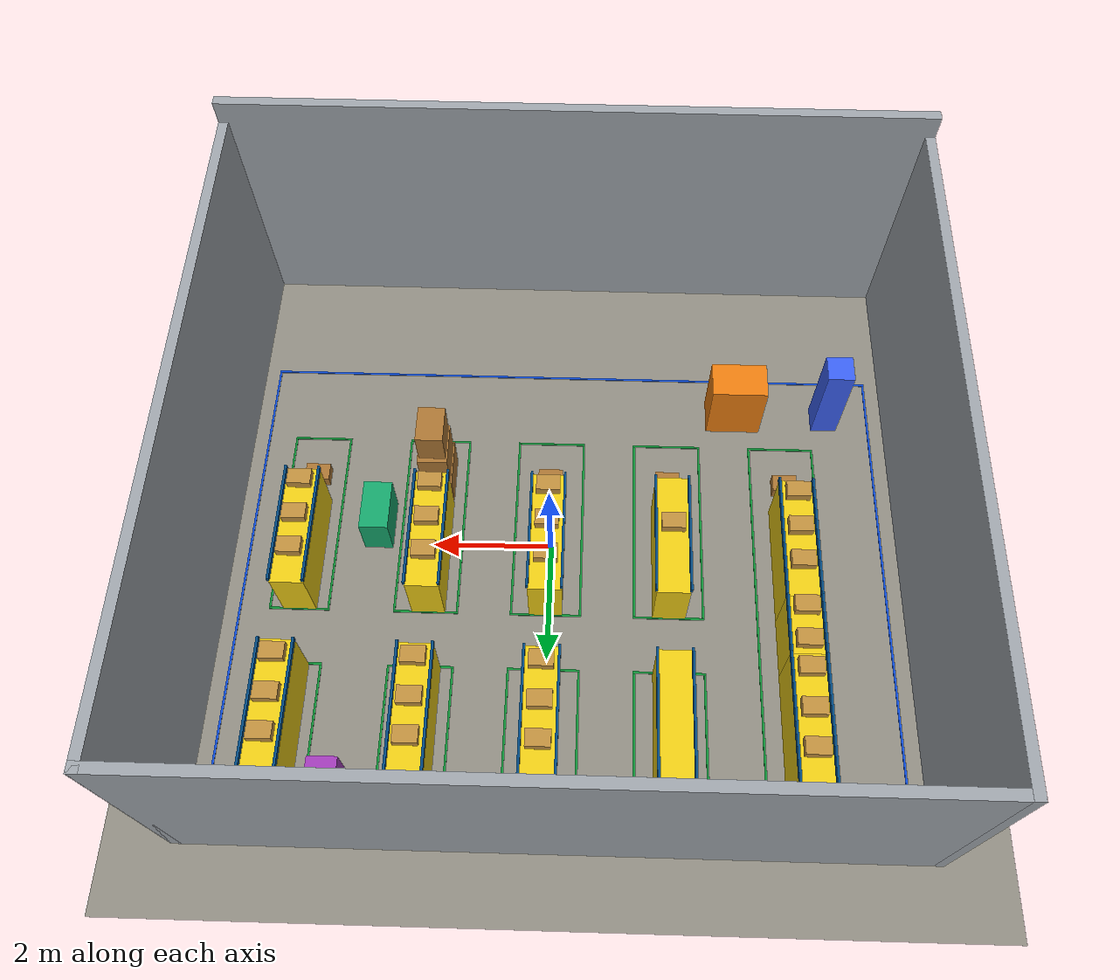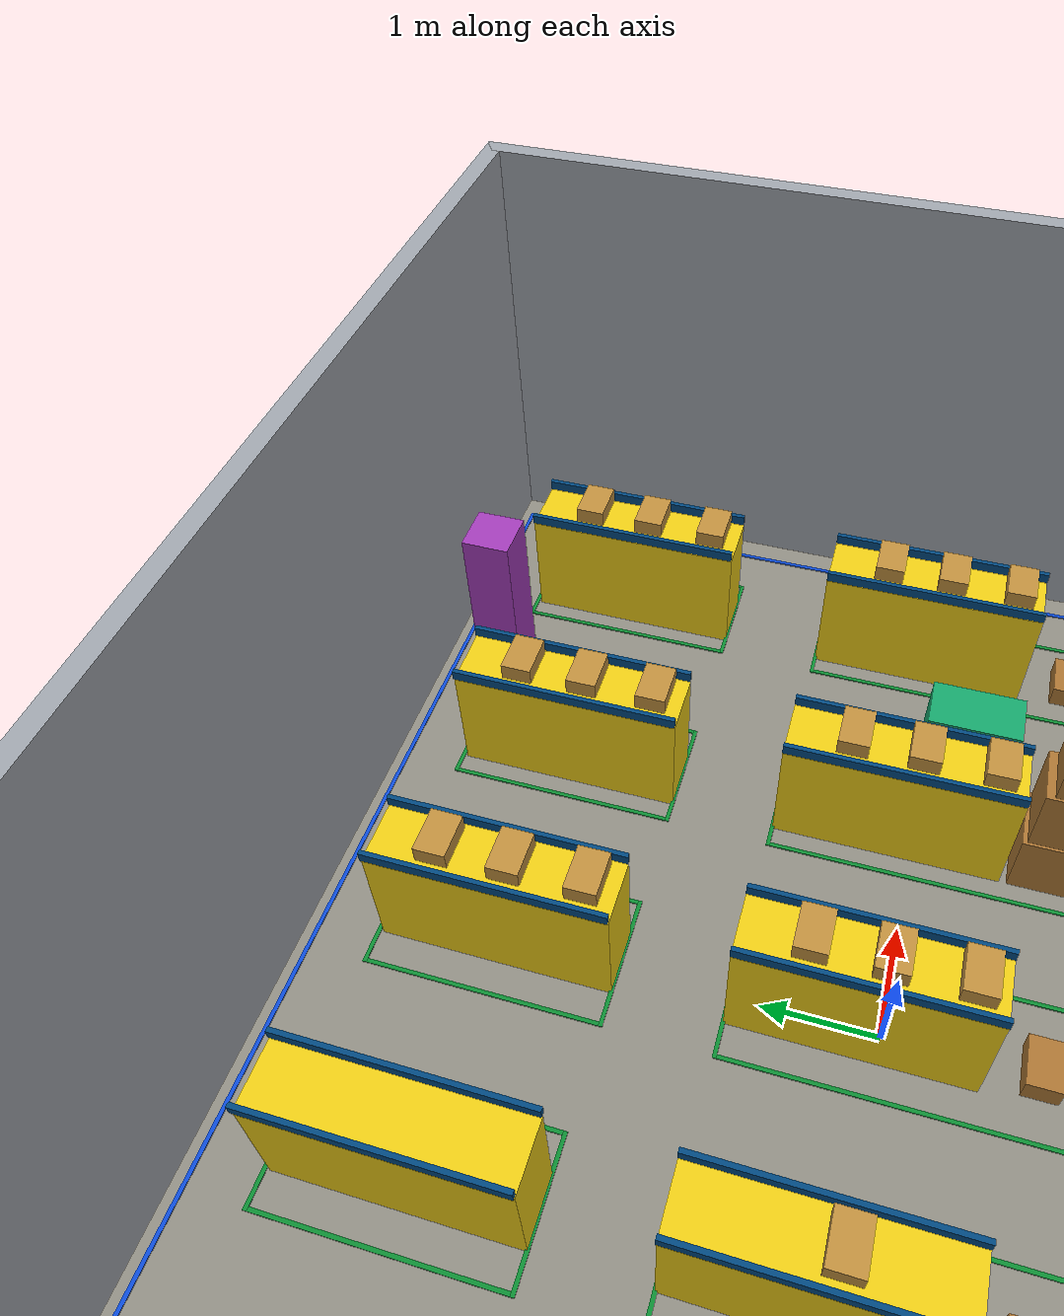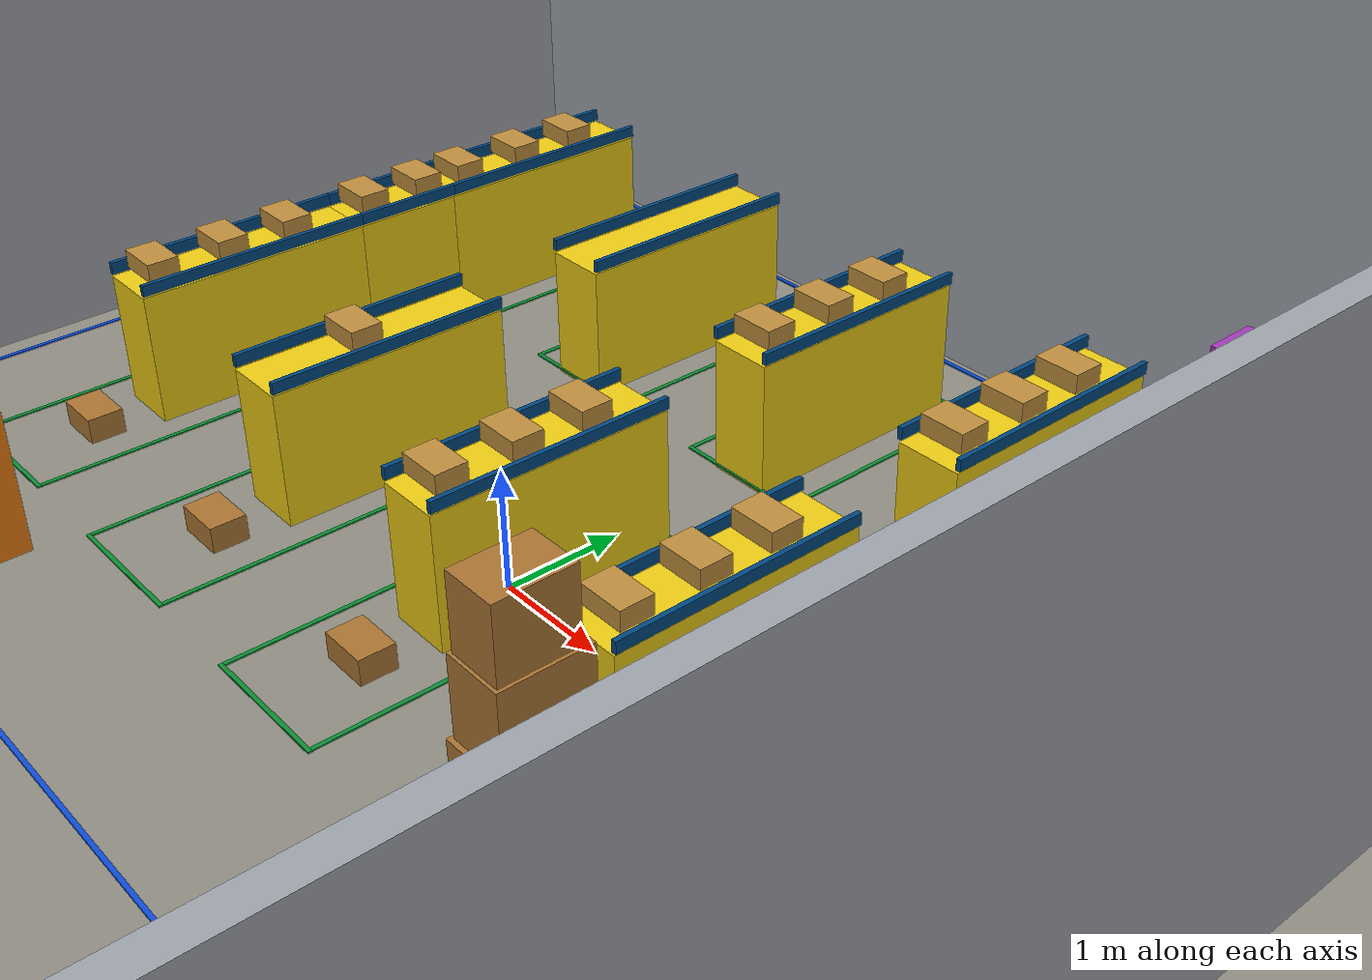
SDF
<sdf version="1.8">
 <world name="warehouse_aws_dynamic">
  <physics name="default_physics" type="ode">
   <max_step_size>0.001</max_step_size>
   <real_time_factor>1.0</real_time_factor>
   <real_time_update_rate>1000</real_time_update_rate>
  </physics>
  <plugin name="gz::sim::systems::Physics" filename="gz-sim-physics-system"/>
  <plugin name="gz::sim::systems::UserCommands" filename="gz-sim-user-commands-system"/>
  <plugin name="gz::sim::systems::SceneBroadcaster" filename="gz-sim-scene-broadcaster-system"/>
  <plugin name="gz::sim::systems::Contact" filename="gz-sim-contact-system"/>
  <plugin name="gz::sim::systems::Sensors" filename="gz-sim-sensors-system">
   <render_engine>ogre2</render_engine>
  </plugin>
  <gravity>0 0 -9.81</gravity>
  <magnetic_field>6e-06 2.3e-05 -4.2e-05</magnetic_field>
  <atmosphere type="adiabatic"/>
  <scene>
   <ambient>0.58 0.58 0.58 1</ambient>
   <background>0.70 0.72 0.74 1</background>
   <shadows>true</shadows>
  </scene>
  <model name="ground_plane">
   <static>true</static>
   <link name="link">
    <collision name="collision">
     <geometry><plane><normal>0 0 1</normal><size>12.0 10.0</size></plane></geometry>
    </collision>
    <visual name="visual">
     <geometry><plane><normal>0 0 1</normal><size>12.0 10.0</size></plane></geometry>
     <material>
      <ambient>0.56 0.55 0.51 1</ambient>
      <diffuse>0.56 0.55 0.51 1</diffuse>
      <specular>0.05 0.05 0.05 1</specular>
     </material>
    </visual>
   </link>
  </model>
  <model name="warehouse_walls">
   <static>true</static>
   <link name="wall_east">
    <pose>5.5 -0.30 2.125 0 0 0</pose>
    <collision name="collision"><geometry><box><size>0.16 10.76 4.25</size></box></geometry></collision>
    <sensor name="contact" type="contact">
     <contact><collision>collision</collision></contact>
     <update_rate>60</update_rate>
    </sensor>
    <visual name="visual">
     <geometry><box><size>0.16 10.76 4.25</size></box></geometry>
     <material><ambient>0.62 0.64 0.67 1</ambient><diffuse>0.62 0.64 0.67 1</diffuse></material>
    </visual>
   </link>
   <link name="wall_west">
    <pose>-6.0 -0.30 2.125 0 0 0</pose>
    <collision name="collision"><geometry><box><size>0.16 10.76 4.25</size></box></geometry></collision>
    <sensor name="contact" type="contact">
     <contact><collision>collision</collision></contact>
     <update_rate>60</update_rate>
    </sensor>
    <visual name="visual">
     <geometry><box><size>0.16 10.76 4.25</size></box></geometry>
     <material><ambient>0.62 0.64 0.67 1</ambient><diffuse>0.62 0.64 0.67 1</diffuse></material>
    </visual>
   </link>
   <link name="wall_north">
    <pose>-0.25 5.0 2.125 0 0 0</pose>
    <collision name="collision"><geometry><box><size>11.66 0.16 4.25</size></box></geometry></collision>
    <sensor name="contact" type="contact">
     <contact><collision>collision</collision></contact>
     <update_rate>60</update_rate>
    </sensor>
    <visual name="visual">
     <geometry><box><size>11.66 0.16 4.25</size></box></geometry>
     <material><ambient>0.62 0.64 0.67 1</ambient><diffuse>0.62 0.64 0.67 1</diffuse></material>
    </visual>
   </link>
   <link name="wall_south">
    <pose>-0.25 -5.6 2.325 0 0 0</pose>
    <collision name="collision"><geometry><box><size>11.66 0.16 4.65</size></box></geometry></collision>
    <sensor name="contact" type="contact">
     <contact><collision>collision</collision></contact>
     <update_rate>60</update_rate>
    </sensor>
    <visual name="visual">
     <geometry><box><size>11.66 0.16 4.65</size></box></geometry>
     <material><ambient>0.62 0.64 0.67 1</ambient><diffuse>0.62 0.64 0.67 1</diffuse></material>
    </visual>
   </link>
   <link name="dock_left">
    <pose>-4.3 -5.69 0.075 0 0 0</pose>
    <visual name="visual">
     <geometry><box><size>0.65 0.055 0.15</size></box></geometry>
     <material><ambient>0.50 0.50 0.50 1</ambient><diffuse>0.50 0.50 0.50 1</diffuse></material>
    </visual>
   </link>
   <link name="dock_receiving">
    <pose>-0.25 -5.69 0.075 0 0 0</pose>
    <visual name="visual">
     <geometry><box><size>0.65 0.055 0.15</size></box></geometry>
     <material><ambient>0.50 0.50 0.50 1</ambient><diffuse>0.50 0.50 0.50 1</diffuse></material>
    </visual>
   </link>
   <link name="dock_shipping_a">
    <pose>2.7 -5.69 0.075 0 0 0</pose>
    <visual name="visual">
     <geometry><box><size>0.65 0.055 0.15</size></box></geometry>
     <material><ambient>0.50 0.50 0.50 1</ambient><diffuse>0.50 0.50 0.50 1</diffuse></material>
    </visual>
   </link>
   <link name="dock_shipping_b">
    <pose>3.6 -5.69 0.075 0 0 0</pose>
    <visual name="visual">
     <geometry><box><size>0.65 0.055 0.15</size></box></geometry>
     <material><ambient>0.50 0.50 0.50 1</ambient><diffuse>0.50 0.50 0.50 1</diffuse></material>
    </visual>
   </link>
  </model>
  <model name="warehouse_rack_occluders">
   <static>true</static>
   <link name="rack_R1_lower">
    <pose>-4.050 0.225 0.575 0 0 0</pose>
    <collision name="collision"><geometry><box><size>0.550 2.050 1.15</size></box></geometry></collision>
    <sensor name="contact" type="contact">
     <contact><collision>collision</collision></contact>
     <update_rate>60</update_rate>
    </sensor>
    <visual name="visual">
     <geometry><box><size>0.550 2.050 1.15</size></box></geometry>
     <material><ambient>0.93 0.80 0.08 1</ambient><diffuse>0.93 0.80 0.08 1</diffuse></material>
    </visual>
   </link>
   <link name="rail_R1_lower_west">
    <pose>-4.325 0.225 1.22 0 0 0</pose>
    <visual name="visual">
     <geometry><box><size>0.040 2.050 0.10</size></box></geometry>
     <material><ambient>0.00 0.28 0.50 1</ambient><diffuse>0.00 0.28 0.50 1</diffuse></material>
    </visual>
   </link>
   <link name="rail_R1_lower_east">
    <pose>-3.775 0.225 1.22 0 0 0</pose>
    <visual name="visual">
     <geometry><box><size>0.040 2.050 0.10</size></box></geometry>
     <material><ambient>0.00 0.28 0.50 1</ambient><diffuse>0.00 0.28 0.50 1</diffuse></material>
    </visual>
   </link>
   <link name="shelf_box_R1_lower_0">
    <pose>-4.050 -0.550 1.30 0 0 0</pose>
    <visual name="visual">
     <geometry><box><size>0.390 0.27 0.16</size></box></geometry>
     <material><ambient>0.75 0.56 0.24 1</ambient><diffuse>0.75 0.56 0.24 1</diffuse></material>
    </visual>
   </link>
   <link name="shelf_box_R1_lower_1">
    <pose>-4.050 0.080 1.30 0 0 0</pose>
    <visual name="visual">
     <geometry><box><size>0.390 0.27 0.16</size></box></geometry>
     <material><ambient>0.75 0.56 0.24 1</ambient><diffuse>0.75 0.56 0.24 1</diffuse></material>
    </visual>
   </link>
   <link name="shelf_box_R1_lower_2">
    <pose>-4.050 0.680 1.30 0 0 0</pose>
    <visual name="visual">
     <geometry><box><size>0.390 0.27 0.16</size></box></geometry>
     <material><ambient>0.75 0.56 0.24 1</ambient><diffuse>0.75 0.56 0.24 1</diffuse></material>
    </visual>
   </link>
   <link name="rack_R1_upper">
    <pose>-4.050 3.225 0.575 0 0 0</pose>
    <collision name="collision"><geometry><box><size>0.550 2.050 1.15</size></box></geometry></collision>
    <sensor name="contact" type="contact">
     <contact><collision>collision</collision></contact>
     <update_rate>60</update_rate>
    </sensor>
    <visual name="visual">
     <geometry><box><size>0.550 2.050 1.15</size></box></geometry>
     <material><ambient>0.93 0.80 0.08 1</ambient><diffuse>0.93 0.80 0.08 1</diffuse></material>
    </visual>
   </link>
   <link name="rail_R1_upper_west">
    <pose>-4.325 3.225 1.22 0 0 0</pose>
    <visual name="visual">
     <geometry><box><size>0.040 2.050 0.10</size></box></geometry>
     <material><ambient>0.00 0.28 0.50 1</ambient><diffuse>0.00 0.28 0.50 1</diffuse></material>
    </visual>
   </link>
   <link name="rail_R1_upper_east">
    <pose>-3.775 3.225 1.22 0 0 0</pose>
    <visual name="visual">
     <geometry><box><size>0.040 2.050 0.10</size></box></geometry>
     <material><ambient>0.00 0.28 0.50 1</ambient><diffuse>0.00 0.28 0.50 1</diffuse></material>
    </visual>
   </link>
   <link name="shelf_box_R1_upper_0">
    <pose>-4.050 2.450 1.30 0 0 0</pose>
    <visual name="visual">
     <geometry><box><size>0.390 0.27 0.16</size></box></geometry>
     <material><ambient>0.75 0.56 0.24 1</ambient><diffuse>0.75 0.56 0.24 1</diffuse></material>
    </visual>
   </link>
   <link name="shelf_box_R1_upper_1">
    <pose>-4.050 3.080 1.30 0 0 0</pose>
    <visual name="visual">
     <geometry><box><size>0.390 0.27 0.16</size></box></geometry>
     <material><ambient>0.75 0.56 0.24 1</ambient><diffuse>0.75 0.56 0.24 1</diffuse></material>
    </visual>
   </link>
   <link name="shelf_box_R1_upper_2">
    <pose>-4.050 3.680 1.30 0 0 0</pose>
    <visual name="visual">
     <geometry><box><size>0.390 0.27 0.16</size></box></geometry>
     <material><ambient>0.75 0.56 0.24 1</ambient><diffuse>0.75 0.56 0.24 1</diffuse></material>
    </visual>
   </link>
   <link name="rack_R1_mid">
    <pose>-4.050 1.725 0.575 0 0 0</pose>
    <collision name="collision"><geometry><box><size>0.550 0.950 1.15</size></box></geometry></collision>
    <sensor name="contact" type="contact">
     <contact><collision>collision</collision></contact>
     <update_rate>60</update_rate>
    </sensor>
    <visual name="visual">
     <geometry><box><size>0.550 0.950 1.15</size></box></geometry>
     <material><ambient>0.93 0.80 0.08 1</ambient><diffuse>0.93 0.80 0.08 1</diffuse></material>
    </visual>
   </link>
   <link name="rail_R1_mid_west">
    <pose>-4.325 1.725 1.22 0 0 0</pose>
    <visual name="visual">
     <geometry><box><size>0.040 0.950 0.10</size></box></geometry>
     <material><ambient>0.00 0.28 0.50 1</ambient><diffuse>0.00 0.28 0.50 1</diffuse></material>
    </visual>
   </link>
   <link name="rail_R1_mid_east">
    <pose>-3.775 1.725 1.22 0 0 0</pose>
    <visual name="visual">
     <geometry><box><size>0.040 0.950 0.10</size></box></geometry>
     <material><ambient>0.00 0.28 0.50 1</ambient><diffuse>0.00 0.28 0.50 1</diffuse></material>
    </visual>
   </link>
   <link name="shelf_box_R1_mid_0">
    <pose>-4.050 1.450 1.30 0 0 0</pose>
    <visual name="visual">
     <geometry><box><size>0.390 0.27 0.16</size></box></geometry>
     <material><ambient>0.75 0.56 0.24 1</ambient><diffuse>0.75 0.56 0.24 1</diffuse></material>
    </visual>
   </link>
   <link name="shelf_box_R1_mid_1">
    <pose>-4.050 2.000 1.30 0 0 0</pose>
    <visual name="visual">
     <geometry><box><size>0.390 0.27 0.16</size></box></geometry>
     <material><ambient>0.75 0.56 0.24 1</ambient><diffuse>0.75 0.56 0.24 1</diffuse></material>
    </visual>
   </link>
   <link name="rack_R2_lower">
    <pose>-2.000 0.225 0.575 0 0 0</pose>
    <collision name="collision"><geometry><box><size>0.550 2.050 1.15</size></box></geometry></collision>
    <sensor name="contact" type="contact">
     <contact><collision>collision</collision></contact>
     <update_rate>60</update_rate>
    </sensor>
    <visual name="visual">
     <geometry><box><size>0.550 2.050 1.15</size></box></geometry>
     <material><ambient>0.93 0.80 0.08 1</ambient><diffuse>0.93 0.80 0.08 1</diffuse></material>
    </visual>
   </link>
   <link name="rail_R2_lower_west">
    <pose>-2.275 0.225 1.22 0 0 0</pose>
    <visual name="visual">
     <geometry><box><size>0.040 2.050 0.10</size></box></geometry>
     <material><ambient>0.00 0.28 0.50 1</ambient><diffuse>0.00 0.28 0.50 1</diffuse></material>
    </visual>
   </link>
   <link name="rail_R2_lower_east">
    <pose>-1.725 0.225 1.22 0 0 0</pose>
    <visual name="visual">
     <geometry><box><size>0.040 2.050 0.10</size></box></geometry>
     <material><ambient>0.00 0.28 0.50 1</ambient><diffuse>0.00 0.28 0.50 1</diffuse></material>
    </visual>
   </link>
   <link name="shelf_box_R2_lower_1">
    <pose>-2.000 0.080 1.30 0 0 0</pose>
    <visual name="visual">
     <geometry><box><size>0.390 0.27 0.16</size></box></geometry>
     <material><ambient>0.75 0.56 0.24 1</ambient><diffuse>0.75 0.56 0.24 1</diffuse></material>
    </visual>
   </link>
   <link name="rack_R2_upper">
    <pose>-2.000 3.225 0.575 0 0 0</pose>
    <collision name="collision"><geometry><box><size>0.550 2.050 1.15</size></box></geometry></collision>
    <sensor name="contact" type="contact">
     <contact><collision>collision</collision></contact>
     <update_rate>60</update_rate>
    </sensor>
    <visual name="visual">
     <geometry><box><size>0.550 2.050 1.15</size></box></geometry>
     <material><ambient>0.93 0.80 0.08 1</ambient><diffuse>0.93 0.80 0.08 1</diffuse></material>
    </visual>
   </link>
   <link name="rail_R2_upper_west">
    <pose>-2.275 3.225 1.22 0 0 0</pose>
    <visual name="visual">
     <geometry><box><size>0.040 2.050 0.10</size></box></geometry>
     <material><ambient>0.00 0.28 0.50 1</ambient><diffuse>0.00 0.28 0.50 1</diffuse></material>
    </visual>
   </link>
   <link name="rail_R2_upper_east">
    <pose>-1.725 3.225 1.22 0 0 0</pose>
    <visual name="visual">
     <geometry><box><size>0.040 2.050 0.10</size></box></geometry>
     <material><ambient>0.00 0.28 0.50 1</ambient><diffuse>0.00 0.28 0.50 1</diffuse></material>
    </visual>
   </link>
   <link name="rack_R3_lower">
    <pose>0.050 0.225 0.575 0 0 0</pose>
    <collision name="collision"><geometry><box><size>0.550 2.050 1.15</size></box></geometry></collision>
    <sensor name="contact" type="contact">
     <contact><collision>collision</collision></contact>
     <update_rate>60</update_rate>
    </sensor>
    <visual name="visual">
     <geometry><box><size>0.550 2.050 1.15</size></box></geometry>
     <material><ambient>0.93 0.80 0.08 1</ambient><diffuse>0.93 0.80 0.08 1</diffuse></material>
    </visual>
   </link>
   <link name="rail_R3_lower_west">
    <pose>-0.225 0.225 1.22 0 0 0</pose>
    <visual name="visual">
     <geometry><box><size>0.040 2.050 0.10</size></box></geometry>
     <material><ambient>0.00 0.28 0.50 1</ambient><diffuse>0.00 0.28 0.50 1</diffuse></material>
    </visual>
   </link>
   <link name="rail_R3_lower_east">
    <pose>0.325 0.225 1.22 0 0 0</pose>
    <visual name="visual">
     <geometry><box><size>0.040 2.050 0.10</size></box></geometry>
     <material><ambient>0.00 0.28 0.50 1</ambient><diffuse>0.00 0.28 0.50 1</diffuse></material>
    </visual>
   </link>
   <link name="shelf_box_R3_lower_0">
    <pose>0.050 -0.550 1.30 0 0 0</pose>
    <visual name="visual">
     <geometry><box><size>0.390 0.27 0.16</size></box></geometry>
     <material><ambient>0.75 0.56 0.24 1</ambient><diffuse>0.75 0.56 0.24 1</diffuse></material>
    </visual>
   </link>
   <link name="shelf_box_R3_lower_1">
    <pose>0.050 0.080 1.30 0 0 0</pose>
    <visual name="visual">
     <geometry><box><size>0.390 0.27 0.16</size></box></geometry>
     <material><ambient>0.75 0.56 0.24 1</ambient><diffuse>0.75 0.56 0.24 1</diffuse></material>
    </visual>
   </link>
   <link name="shelf_box_R3_lower_2">
    <pose>0.050 0.680 1.30 0 0 0</pose>
    <visual name="visual">
     <geometry><box><size>0.390 0.27 0.16</size></box></geometry>
     <material><ambient>0.75 0.56 0.24 1</ambient><diffuse>0.75 0.56 0.24 1</diffuse></material>
    </visual>
   </link>
   <link name="rack_R3_upper">
    <pose>0.050 3.225 0.575 0 0 0</pose>
    <collision name="collision"><geometry><box><size>0.550 2.050 1.15</size></box></geometry></collision>
    <sensor name="contact" type="contact">
     <contact><collision>collision</collision></contact>
     <update_rate>60</update_rate>
    </sensor>
    <visual name="visual">
     <geometry><box><size>0.550 2.050 1.15</size></box></geometry>
     <material><ambient>0.93 0.80 0.08 1</ambient><diffuse>0.93 0.80 0.08 1</diffuse></material>
    </visual>
   </link>
   <link name="rail_R3_upper_west">
    <pose>-0.225 3.225 1.22 0 0 0</pose>
    <visual name="visual">
     <geometry><box><size>0.040 2.050 0.10</size></box></geometry>
     <material><ambient>0.00 0.28 0.50 1</ambient><diffuse>0.00 0.28 0.50 1</diffuse></material>
    </visual>
   </link>
   <link name="rail_R3_upper_east">
    <pose>0.325 3.225 1.22 0 0 0</pose>
    <visual name="visual">
     <geometry><box><size>0.040 2.050 0.10</size></box></geometry>
     <material><ambient>0.00 0.28 0.50 1</ambient><diffuse>0.00 0.28 0.50 1</diffuse></material>
    </visual>
   </link>
   <link name="shelf_box_R3_upper_0">
    <pose>0.050 2.450 1.30 0 0 0</pose>
    <visual name="visual">
     <geometry><box><size>0.390 0.27 0.16</size></box></geometry>
     <material><ambient>0.75 0.56 0.24 1</ambient><diffuse>0.75 0.56 0.24 1</diffuse></material>
    </visual>
   </link>
   <link name="shelf_box_R3_upper_1">
    <pose>0.050 3.080 1.30 0 0 0</pose>
    <visual name="visual">
     <geometry><box><size>0.390 0.27 0.16</size></box></geometry>
     <material><ambient>0.75 0.56 0.24 1</ambient><diffuse>0.75 0.56 0.24 1</diffuse></material>
    </visual>
   </link>
   <link name="shelf_box_R3_upper_2">
    <pose>0.050 3.680 1.30 0 0 0</pose>
    <visual name="visual">
     <geometry><box><size>0.390 0.27 0.16</size></box></geometry>
     <material><ambient>0.75 0.56 0.24 1</ambient><diffuse>0.75 0.56 0.24 1</diffuse></material>
    </visual>
   </link>
   <link name="rack_R4_lower">
    <pose>2.000 0.225 0.575 0 0 0</pose>
    <collision name="collision"><geometry><box><size>0.550 2.050 1.15</size></box></geometry></collision>
    <sensor name="contact" type="contact">
     <contact><collision>collision</collision></contact>
     <update_rate>60</update_rate>
    </sensor>
    <visual name="visual">
     <geometry><box><size>0.550 2.050 1.15</size></box></geometry>
     <material><ambient>0.93 0.80 0.08 1</ambient><diffuse>0.93 0.80 0.08 1</diffuse></material>
    </visual>
   </link>
   <link name="rail_R4_lower_west">
    <pose>1.725 0.225 1.22 0 0 0</pose>
    <visual name="visual">
     <geometry><box><size>0.040 2.050 0.10</size></box></geometry>
     <material><ambient>0.00 0.28 0.50 1</ambient><diffuse>0.00 0.28 0.50 1</diffuse></material>
    </visual>
   </link>
   <link name="rail_R4_lower_east">
    <pose>2.275 0.225 1.22 0 0 0</pose>
    <visual name="visual">
     <geometry><box><size>0.040 2.050 0.10</size></box></geometry>
     <material><ambient>0.00 0.28 0.50 1</ambient><diffuse>0.00 0.28 0.50 1</diffuse></material>
    </visual>
   </link>
   <link name="shelf_box_R4_lower_0">
    <pose>2.000 -0.550 1.30 0 0 0</pose>
    <visual name="visual">
     <geometry><box><size>0.390 0.27 0.16</size></box></geometry>
     <material><ambient>0.75 0.56 0.24 1</ambient><diffuse>0.75 0.56 0.24 1</diffuse></material>
    </visual>
   </link>
   <link name="shelf_box_R4_lower_1">
    <pose>2.000 0.080 1.30 0 0 0</pose>
    <visual name="visual">
     <geometry><box><size>0.390 0.27 0.16</size></box></geometry>
     <material><ambient>0.75 0.56 0.24 1</ambient><diffuse>0.75 0.56 0.24 1</diffuse></material>
    </visual>
   </link>
   <link name="shelf_box_R4_lower_2">
    <pose>2.000 0.680 1.30 0 0 0</pose>
    <visual name="visual">
     <geometry><box><size>0.390 0.27 0.16</size></box></geometry>
     <material><ambient>0.75 0.56 0.24 1</ambient><diffuse>0.75 0.56 0.24 1</diffuse></material>
    </visual>
   </link>
   <link name="rack_R4_upper">
    <pose>2.000 3.225 0.575 0 0 0</pose>
    <collision name="collision"><geometry><box><size>0.550 2.050 1.15</size></box></geometry></collision>
    <sensor name="contact" type="contact">
     <contact><collision>collision</collision></contact>
     <update_rate>60</update_rate>
    </sensor>
    <visual name="visual">
     <geometry><box><size>0.550 2.050 1.15</size></box></geometry>
     <material><ambient>0.93 0.80 0.08 1</ambient><diffuse>0.93 0.80 0.08 1</diffuse></material>
    </visual>
   </link>
   <link name="rail_R4_upper_west">
    <pose>1.725 3.225 1.22 0 0 0</pose>
    <visual name="visual">
     <geometry><box><size>0.040 2.050 0.10</size></box></geometry>
     <material><ambient>0.00 0.28 0.50 1</ambient><diffuse>0.00 0.28 0.50 1</diffuse></material>
    </visual>
   </link>
   <link name="rail_R4_upper_east">
    <pose>2.275 3.225 1.22 0 0 0</pose>
    <visual name="visual">
     <geometry><box><size>0.040 2.050 0.10</size></box></geometry>
     <material><ambient>0.00 0.28 0.50 1</ambient><diffuse>0.00 0.28 0.50 1</diffuse></material>
    </visual>
   </link>
   <link name="shelf_box_R4_upper_0">
    <pose>2.000 2.450 1.30 0 0 0</pose>
    <visual name="visual">
     <geometry><box><size>0.390 0.27 0.16</size></box></geometry>
     <material><ambient>0.75 0.56 0.24 1</ambient><diffuse>0.75 0.56 0.24 1</diffuse></material>
    </visual>
   </link>
   <link name="shelf_box_R4_upper_1">
    <pose>2.000 3.080 1.30 0 0 0</pose>
    <visual name="visual">
     <geometry><box><size>0.390 0.27 0.16</size></box></geometry>
     <material><ambient>0.75 0.56 0.24 1</ambient><diffuse>0.75 0.56 0.24 1</diffuse></material>
    </visual>
   </link>
   <link name="shelf_box_R4_upper_2">
    <pose>2.000 3.680 1.30 0 0 0</pose>
    <visual name="visual">
     <geometry><box><size>0.390 0.27 0.16</size></box></geometry>
     <material><ambient>0.75 0.56 0.24 1</ambient><diffuse>0.75 0.56 0.24 1</diffuse></material>
    </visual>
   </link>
   <link name="rack_R5_lower">
    <pose>4.150 0.225 0.575 0 0 0</pose>
    <collision name="collision"><geometry><box><size>0.550 2.050 1.15</size></box></geometry></collision>
    <sensor name="contact" type="contact">
     <contact><collision>collision</collision></contact>
     <update_rate>60</update_rate>
    </sensor>
    <visual name="visual">
     <geometry><box><size>0.550 2.050 1.15</size></box></geometry>
     <material><ambient>0.93 0.80 0.08 1</ambient><diffuse>0.93 0.80 0.08 1</diffuse></material>
    </visual>
   </link>
   <link name="rail_R5_lower_west">
    <pose>3.875 0.225 1.22 0 0 0</pose>
    <visual name="visual">
     <geometry><box><size>0.040 2.050 0.10</size></box></geometry>
     <material><ambient>0.00 0.28 0.50 1</ambient><diffuse>0.00 0.28 0.50 1</diffuse></material>
    </visual>
   </link>
   <link name="rail_R5_lower_east">
    <pose>4.425 0.225 1.22 0 0 0</pose>
    <visual name="visual">
     <geometry><box><size>0.040 2.050 0.10</size></box></geometry>
     <material><ambient>0.00 0.28 0.50 1</ambient><diffuse>0.00 0.28 0.50 1</diffuse></material>
    </visual>
   </link>
   <link name="shelf_box_R5_lower_0">
    <pose>4.150 -0.550 1.30 0 0 0</pose>
    <visual name="visual">
     <geometry><box><size>0.390 0.27 0.16</size></box></geometry>
     <material><ambient>0.75 0.56 0.24 1</ambient><diffuse>0.75 0.56 0.24 1</diffuse></material>
    </visual>
   </link>
   <link name="shelf_box_R5_lower_1">
    <pose>4.150 0.080 1.30 0 0 0</pose>
    <visual name="visual">
     <geometry><box><size>0.390 0.27 0.16</size></box></geometry>
     <material><ambient>0.75 0.56 0.24 1</ambient><diffuse>0.75 0.56 0.24 1</diffuse></material>
    </visual>
   </link>
   <link name="shelf_box_R5_lower_2">
    <pose>4.150 0.680 1.30 0 0 0</pose>
    <visual name="visual">
     <geometry><box><size>0.390 0.27 0.16</size></box></geometry>
     <material><ambient>0.75 0.56 0.24 1</ambient><diffuse>0.75 0.56 0.24 1</diffuse></material>
    </visual>
   </link>
   <link name="rack_R5_upper">
    <pose>4.150 3.225 0.575 0 0 0</pose>
    <collision name="collision"><geometry><box><size>0.550 2.050 1.15</size></box></geometry></collision>
    <sensor name="contact" type="contact">
     <contact><collision>collision</collision></contact>
     <update_rate>60</update_rate>
    </sensor>
    <visual name="visual">
     <geometry><box><size>0.550 2.050 1.15</size></box></geometry>
     <material><ambient>0.93 0.80 0.08 1</ambient><diffuse>0.93 0.80 0.08 1</diffuse></material>
    </visual>
   </link>
   <link name="rail_R5_upper_west">
    <pose>3.875 3.225 1.22 0 0 0</pose>
    <visual name="visual">
     <geometry><box><size>0.040 2.050 0.10</size></box></geometry>
     <material><ambient>0.00 0.28 0.50 1</ambient><diffuse>0.00 0.28 0.50 1</diffuse></material>
    </visual>
   </link>
   <link name="rail_R5_upper_east">
    <pose>4.425 3.225 1.22 0 0 0</pose>
    <visual name="visual">
     <geometry><box><size>0.040 2.050 0.10</size></box></geometry>
     <material><ambient>0.00 0.28 0.50 1</ambient><diffuse>0.00 0.28 0.50 1</diffuse></material>
    </visual>
   </link>
   <link name="shelf_box_R5_upper_0">
    <pose>4.150 2.450 1.30 0 0 0</pose>
    <visual name="visual">
     <geometry><box><size>0.390 0.27 0.16</size></box></geometry>
     <material><ambient>0.75 0.56 0.24 1</ambient><diffuse>0.75 0.56 0.24 1</diffuse></material>
    </visual>
   </link>
   <link name="shelf_box_R5_upper_1">
    <pose>4.150 3.080 1.30 0 0 0</pose>
    <visual name="visual">
     <geometry><box><size>0.390 0.27 0.16</size></box></geometry>
     <material><ambient>0.75 0.56 0.24 1</ambient><diffuse>0.75 0.56 0.24 1</diffuse></material>
    </visual>
   </link>
   <link name="shelf_box_R5_upper_2">
    <pose>4.150 3.680 1.30 0 0 0</pose>
    <visual name="visual">
     <geometry><box><size>0.390 0.27 0.16</size></box></geometry>
     <material><ambient>0.75 0.56 0.24 1</ambient><diffuse>0.75 0.56 0.24 1</diffuse></material>
    </visual>
   </link>
   <link name="low_crate_R1">
    <pose>-4.050 -1.265 0.110 0 0 0</pose>
    <collision name="collision"><geometry><box><size>0.42 0.30 0.22</size></box></geometry></collision>
    <sensor name="contact" type="contact">
     <contact><collision>collision</collision></contact>
     <update_rate>60</update_rate>
    </sensor>
    <visual name="visual">
     <geometry><box><size>0.42 0.30 0.22</size></box></geometry>
     <material><ambient>0.67 0.46 0.20 1</ambient><diffuse>0.67 0.46 0.20 1</diffuse></material>
    </visual>
   </link>
   <link name="low_crate_R2">
    <pose>-2.000 -1.265 0.110 0 0 0</pose>
    <collision name="collision"><geometry><box><size>0.42 0.30 0.22</size></box></geometry></collision>
    <sensor name="contact" type="contact">
     <contact><collision>collision</collision></contact>
     <update_rate>60</update_rate>
    </sensor>
    <visual name="visual">
     <geometry><box><size>0.42 0.30 0.22</size></box></geometry>
     <material><ambient>0.67 0.46 0.20 1</ambient><diffuse>0.67 0.46 0.20 1</diffuse></material>
    </visual>
   </link>
   <link name="low_crate_R3">
    <pose>0.050 -1.265 0.110 0 0 0</pose>
    <collision name="collision"><geometry><box><size>0.42 0.30 0.22</size></box></geometry></collision>
    <sensor name="contact" type="contact">
     <contact><collision>collision</collision></contact>
     <update_rate>60</update_rate>
    </sensor>
    <visual name="visual">
     <geometry><box><size>0.42 0.30 0.22</size></box></geometry>
     <material><ambient>0.67 0.46 0.20 1</ambient><diffuse>0.67 0.46 0.20 1</diffuse></material>
    </visual>
   </link>
   <link name="low_crate_R5">
    <pose>4.150 -1.265 0.110 0 0 0</pose>
    <collision name="collision"><geometry><box><size>0.42 0.30 0.22</size></box></geometry></collision>
    <sensor name="contact" type="contact">
     <contact><collision>collision</collision></contact>
     <update_rate>60</update_rate>
    </sensor>
    <visual name="visual">
     <geometry><box><size>0.42 0.30 0.22</size></box></geometry>
     <material><ambient>0.67 0.46 0.20 1</ambient><diffuse>0.67 0.46 0.20 1</diffuse></material>
    </visual>
   </link>
   <link name="crate_R4_occluder_0">
    <pose>2.000 -1.265 0.325 0 0 0</pose>
    <collision name="collision"><geometry><box><size>0.55 0.80 0.65</size></box></geometry></collision>
    <sensor name="contact" type="contact">
     <contact><collision>collision</collision></contact>
     <update_rate>60</update_rate>
    </sensor>
    <visual name="visual">
     <geometry><box><size>0.55 0.80 0.65</size></box></geometry>
     <material><ambient>0.67 0.46 0.20 1</ambient><diffuse>0.67 0.46 0.20 1</diffuse></material>
    </visual>
   </link>
   <link name="crate_R4_occluder_1">
    <pose>2.000 -1.265 0.975 0 0 0</pose>
    <collision name="collision"><geometry><box><size>0.50 0.72 0.65</size></box></geometry></collision>
    <sensor name="contact" type="contact">
     <contact><collision>collision</collision></contact>
     <update_rate>60</update_rate>
    </sensor>
    <visual name="visual">
     <geometry><box><size>0.50 0.72 0.65</size></box></geometry>
     <material><ambient>0.67 0.46 0.20 1</ambient><diffuse>0.67 0.46 0.20 1</diffuse></material>
    </visual>
   </link>
   <link name="crate_R4_occluder_2">
    <pose>2.000 -1.290 1.600 0 0 0</pose>
    <collision name="collision"><geometry><box><size>0.45 0.62 0.60</size></box></geometry></collision>
    <sensor name="contact" type="contact">
     <contact><collision>collision</collision></contact>
     <update_rate>60</update_rate>
    </sensor>
    <visual name="visual">
     <geometry><box><size>0.45 0.62 0.60</size></box></geometry>
     <material><ambient>0.67 0.46 0.20 1</ambient><diffuse>0.67 0.46 0.20 1</diffuse></material>
    </visual>
   </link>
  </model>
  <model name="known_driveable_boundary">
   <static>true</static>
   <link name="driveable_outer_00">
    <pose>-0.2500 -3.4500 0.035 0 0 0</pose>
    <visual name="visual">
     <geometry><box><size>10.8350 0.0350 0.014</size></box></geometry>
     <material><ambient>0.05 0.30 0.85 1</ambient><diffuse>0.05 0.30 0.85 1</diffuse></material>
    </visual>
   </link>
   <link name="driveable_outer_01">
    <pose>-0.2500 4.8000 0.035 0 0 0</pose>
    <visual name="visual">
     <geometry><box><size>10.8350 0.0350 0.014</size></box></geometry>
     <material><ambient>0.05 0.30 0.85 1</ambient><diffuse>0.05 0.30 0.85 1</diffuse></material>
    </visual>
   </link>
   <link name="driveable_outer_02">
    <pose>-5.6500 0.6750 0.035 0 0 0</pose>
    <visual name="visual">
     <geometry><box><size>0.0350 8.2150 0.014</size></box></geometry>
     <material><ambient>0.05 0.30 0.85 1</ambient><diffuse>0.05 0.30 0.85 1</diffuse></material>
    </visual>
   </link>
   <link name="driveable_outer_03">
    <pose>5.1500 0.6750 0.035 0 0 0</pose>
    <visual name="visual">
     <geometry><box><size>0.0350 8.2150 0.014</size></box></geometry>
     <material><ambient>0.05 0.30 0.85 1</ambient><diffuse>0.05 0.30 0.85 1</diffuse></material>
    </visual>
   </link>
   <link name="nogo_col0_04">
    <pose>-4.0375 -2.0300 0.035 0 0 0</pose>
    <visual name="visual">
     <geometry><box><size>1.1600 0.0350 0.014</size></box></geometry>
     <material><ambient>0.05 0.55 0.20 1</ambient><diffuse>0.05 0.55 0.20 1</diffuse></material>
    </visual>
   </link>
   <link name="nogo_col0_05">
    <pose>-4.0375 4.2800 0.035 0 0 0</pose>
    <visual name="visual">
     <geometry><box><size>1.1600 0.0350 0.014</size></box></geometry>
     <material><ambient>0.05 0.55 0.20 1</ambient><diffuse>0.05 0.55 0.20 1</diffuse></material>
    </visual>
   </link>
   <link name="nogo_col0_06">
    <pose>-4.6000 1.1250 0.035 0 0 0</pose>
    <visual name="visual">
     <geometry><box><size>0.0350 6.2750 0.014</size></box></geometry>
     <material><ambient>0.05 0.55 0.20 1</ambient><diffuse>0.05 0.55 0.20 1</diffuse></material>
    </visual>
   </link>
   <link name="nogo_col0_07">
    <pose>-3.4750 1.1250 0.035 0 0 0</pose>
    <visual name="visual">
     <geometry><box><size>0.0350 6.2750 0.014</size></box></geometry>
     <material><ambient>0.05 0.55 0.20 1</ambient><diffuse>0.05 0.55 0.20 1</diffuse></material>
    </visual>
   </link>
   <link name="nogo_col1_08">
    <pose>-2.0000 -2.0300 0.035 0 0 0</pose>
    <visual name="visual">
     <geometry><box><size>1.1850 0.0350 0.014</size></box></geometry>
     <material><ambient>0.05 0.55 0.20 1</ambient><diffuse>0.05 0.55 0.20 1</diffuse></material>
    </visual>
   </link>
   <link name="nogo_col1_09">
    <pose>-2.0000 1.2500 0.035 0 0 0</pose>
    <visual name="visual">
     <geometry><box><size>1.1850 0.0350 0.014</size></box></geometry>
     <material><ambient>0.05 0.55 0.20 1</ambient><diffuse>0.05 0.55 0.20 1</diffuse></material>
    </visual>
   </link>
   <link name="nogo_col1_10">
    <pose>-2.5750 -0.3900 0.035 0 0 0</pose>
    <visual name="visual">
     <geometry><box><size>0.0350 3.2450 0.014</size></box></geometry>
     <material><ambient>0.05 0.55 0.20 1</ambient><diffuse>0.05 0.55 0.20 1</diffuse></material>
    </visual>
   </link>
   <link name="nogo_col1_11">
    <pose>-1.4250 -0.3900 0.035 0 0 0</pose>
    <visual name="visual">
     <geometry><box><size>0.0350 3.2450 0.014</size></box></geometry>
     <material><ambient>0.05 0.55 0.20 1</ambient><diffuse>0.05 0.55 0.20 1</diffuse></material>
    </visual>
   </link>
   <link name="nogo_col2_12">
    <pose>-2.0000 2.2000 0.035 0 0 0</pose>
    <visual name="visual">
     <geometry><box><size>1.1850 0.0350 0.014</size></box></geometry>
     <material><ambient>0.05 0.55 0.20 1</ambient><diffuse>0.05 0.55 0.20 1</diffuse></material>
    </visual>
   </link>
   <link name="nogo_col2_13">
    <pose>-2.0000 4.2800 0.035 0 0 0</pose>
    <visual name="visual">
     <geometry><box><size>1.1850 0.0350 0.014</size></box></geometry>
     <material><ambient>0.05 0.55 0.20 1</ambient><diffuse>0.05 0.55 0.20 1</diffuse></material>
    </visual>
   </link>
   <link name="nogo_col2_14">
    <pose>-2.5750 3.2400 0.035 0 0 0</pose>
    <visual name="visual">
     <geometry><box><size>0.0350 2.0450 0.014</size></box></geometry>
     <material><ambient>0.05 0.55 0.20 1</ambient><diffuse>0.05 0.55 0.20 1</diffuse></material>
    </visual>
   </link>
   <link name="nogo_col2_15">
    <pose>-1.4250 3.2400 0.035 0 0 0</pose>
    <visual name="visual">
     <geometry><box><size>0.0350 2.0450 0.014</size></box></geometry>
     <material><ambient>0.05 0.55 0.20 1</ambient><diffuse>0.05 0.55 0.20 1</diffuse></material>
    </visual>
   </link>
   <link name="nogo_col3_16">
    <pose>0.0500 -2.0300 0.035 0 0 0</pose>
    <visual name="visual">
     <geometry><box><size>1.1850 0.0350 0.014</size></box></geometry>
     <material><ambient>0.05 0.55 0.20 1</ambient><diffuse>0.05 0.55 0.20 1</diffuse></material>
    </visual>
   </link>
   <link name="nogo_col3_17">
    <pose>0.0500 1.2500 0.035 0 0 0</pose>
    <visual name="visual">
     <geometry><box><size>1.1850 0.0350 0.014</size></box></geometry>
     <material><ambient>0.05 0.55 0.20 1</ambient><diffuse>0.05 0.55 0.20 1</diffuse></material>
    </visual>
   </link>
   <link name="nogo_col3_18">
    <pose>-0.5250 -0.3900 0.035 0 0 0</pose>
    <visual name="visual">
     <geometry><box><size>0.0350 3.2450 0.014</size></box></geometry>
     <material><ambient>0.05 0.55 0.20 1</ambient><diffuse>0.05 0.55 0.20 1</diffuse></material>
    </visual>
   </link>
   <link name="nogo_col3_19">
    <pose>0.6250 -0.3900 0.035 0 0 0</pose>
    <visual name="visual">
     <geometry><box><size>0.0350 3.2450 0.014</size></box></geometry>
     <material><ambient>0.05 0.55 0.20 1</ambient><diffuse>0.05 0.55 0.20 1</diffuse></material>
    </visual>
   </link>
   <link name="nogo_col4_20">
    <pose>0.0500 2.2000 0.035 0 0 0</pose>
    <visual name="visual">
     <geometry><box><size>1.1850 0.0350 0.014</size></box></geometry>
     <material><ambient>0.05 0.55 0.20 1</ambient><diffuse>0.05 0.55 0.20 1</diffuse></material>
    </visual>
   </link>
   <link name="nogo_col4_21">
    <pose>0.0500 4.2800 0.035 0 0 0</pose>
    <visual name="visual">
     <geometry><box><size>1.1850 0.0350 0.014</size></box></geometry>
     <material><ambient>0.05 0.55 0.20 1</ambient><diffuse>0.05 0.55 0.20 1</diffuse></material>
    </visual>
   </link>
   <link name="nogo_col4_22">
    <pose>-0.5250 3.2400 0.035 0 0 0</pose>
    <visual name="visual">
     <geometry><box><size>0.0350 2.0450 0.014</size></box></geometry>
     <material><ambient>0.05 0.55 0.20 1</ambient><diffuse>0.05 0.55 0.20 1</diffuse></material>
    </visual>
   </link>
   <link name="nogo_col4_23">
    <pose>0.6250 3.2400 0.035 0 0 0</pose>
    <visual name="visual">
     <geometry><box><size>0.0350 2.0450 0.014</size></box></geometry>
     <material><ambient>0.05 0.55 0.20 1</ambient><diffuse>0.05 0.55 0.20 1</diffuse></material>
    </visual>
   </link>
   <link name="nogo_col5_24">
    <pose>2.0500 -2.0300 0.035 0 0 0</pose>
    <visual name="visual">
     <geometry><box><size>1.0850 0.0350 0.014</size></box></geometry>
     <material><ambient>0.05 0.55 0.20 1</ambient><diffuse>0.05 0.55 0.20 1</diffuse></material>
    </visual>
   </link>
   <link name="nogo_col5_25">
    <pose>2.0500 1.2500 0.035 0 0 0</pose>
    <visual name="visual">
     <geometry><box><size>1.0850 0.0350 0.014</size></box></geometry>
     <material><ambient>0.05 0.55 0.20 1</ambient><diffuse>0.05 0.55 0.20 1</diffuse></material>
    </visual>
   </link>
   <link name="nogo_col5_26">
    <pose>1.5250 -0.3900 0.035 0 0 0</pose>
    <visual name="visual">
     <geometry><box><size>0.0350 3.2450 0.014</size></box></geometry>
     <material><ambient>0.05 0.55 0.20 1</ambient><diffuse>0.05 0.55 0.20 1</diffuse></material>
    </visual>
   </link>
   <link name="nogo_col5_27">
    <pose>2.5750 -0.3900 0.035 0 0 0</pose>
    <visual name="visual">
     <geometry><box><size>0.0350 3.2450 0.014</size></box></geometry>
     <material><ambient>0.05 0.55 0.20 1</ambient><diffuse>0.05 0.55 0.20 1</diffuse></material>
    </visual>
   </link>
   <link name="nogo_col6_28">
    <pose>2.0500 2.2000 0.035 0 0 0</pose>
    <visual name="visual">
     <geometry><box><size>1.0850 0.0350 0.014</size></box></geometry>
     <material><ambient>0.05 0.55 0.20 1</ambient><diffuse>0.05 0.55 0.20 1</diffuse></material>
    </visual>
   </link>
   <link name="nogo_col6_29">
    <pose>2.0500 4.2800 0.035 0 0 0</pose>
    <visual name="visual">
     <geometry><box><size>1.0850 0.0350 0.014</size></box></geometry>
     <material><ambient>0.05 0.55 0.20 1</ambient><diffuse>0.05 0.55 0.20 1</diffuse></material>
    </visual>
   </link>
   <link name="nogo_col6_30">
    <pose>1.5250 3.2400 0.035 0 0 0</pose>
    <visual name="visual">
     <geometry><box><size>0.0350 2.0450 0.014</size></box></geometry>
     <material><ambient>0.05 0.55 0.20 1</ambient><diffuse>0.05 0.55 0.20 1</diffuse></material>
    </visual>
   </link>
   <link name="nogo_col6_31">
    <pose>2.5750 3.2400 0.035 0 0 0</pose>
    <visual name="visual">
     <geometry><box><size>0.0350 2.0450 0.014</size></box></geometry>
     <material><ambient>0.05 0.55 0.20 1</ambient><diffuse>0.05 0.55 0.20 1</diffuse></material>
    </visual>
   </link>
   <link name="nogo_col7_32">
    <pose>4.1625 -2.0300 0.035 0 0 0</pose>
    <visual name="visual">
     <geometry><box><size>1.0100 0.0350 0.014</size></box></geometry>
     <material><ambient>0.05 0.55 0.20 1</ambient><diffuse>0.05 0.55 0.20 1</diffuse></material>
    </visual>
   </link>
   <link name="nogo_col7_33">
    <pose>4.1625 1.2500 0.035 0 0 0</pose>
    <visual name="visual">
     <geometry><box><size>1.0100 0.0350 0.014</size></box></geometry>
     <material><ambient>0.05 0.55 0.20 1</ambient><diffuse>0.05 0.55 0.20 1</diffuse></material>
    </visual>
   </link>
   <link name="nogo_col7_34">
    <pose>3.6750 -0.3900 0.035 0 0 0</pose>
    <visual name="visual">
     <geometry><box><size>0.0350 3.2450 0.014</size></box></geometry>
     <material><ambient>0.05 0.55 0.20 1</ambient><diffuse>0.05 0.55 0.20 1</diffuse></material>
    </visual>
   </link>
   <link name="nogo_col7_35">
    <pose>4.6500 -0.3900 0.035 0 0 0</pose>
    <visual name="visual">
     <geometry><box><size>0.0350 3.2450 0.014</size></box></geometry>
     <material><ambient>0.05 0.55 0.20 1</ambient><diffuse>0.05 0.55 0.20 1</diffuse></material>
    </visual>
   </link>
   <link name="nogo_col8_36">
    <pose>4.1625 2.2000 0.035 0 0 0</pose>
    <visual name="visual">
     <geometry><box><size>1.0100 0.0350 0.014</size></box></geometry>
     <material><ambient>0.05 0.55 0.20 1</ambient><diffuse>0.05 0.55 0.20 1</diffuse></material>
    </visual>
   </link>
   <link name="nogo_col8_37">
    <pose>4.1625 4.2800 0.035 0 0 0</pose>
    <visual name="visual">
     <geometry><box><size>1.0100 0.0350 0.014</size></box></geometry>
     <material><ambient>0.05 0.55 0.20 1</ambient><diffuse>0.05 0.55 0.20 1</diffuse></material>
    </visual>
   </link>
   <link name="nogo_col8_38">
    <pose>3.6750 3.2400 0.035 0 0 0</pose>
    <visual name="visual">
     <geometry><box><size>0.0350 2.0450 0.014</size></box></geometry>
     <material><ambient>0.05 0.55 0.20 1</ambient><diffuse>0.05 0.55 0.20 1</diffuse></material>
    </visual>
   </link>
   <link name="nogo_col8_39">
    <pose>4.6500 3.2400 0.035 0 0 0</pose>
    <visual name="visual">
     <geometry><box><size>0.0350 2.0450 0.014</size></box></geometry>
     <material><ambient>0.05 0.55 0.20 1</ambient><diffuse>0.05 0.55 0.20 1</diffuse></material>
    </visual>
   </link>
  </model>
  <include>
   <name>external_camera</name>
   <uri>model://external_camera</uri>
   <pose>0.00 -5.50 4.80 0 0.92 1.5708</pose>
  </include>
  <light name="sun" type="directional">
   <pose>0 0 10 0 0 0</pose>
   <intensity>0.72</intensity>
   <direction>-0.25 0.15 -1</direction>
  </light>
  <light name="dock_overhead_light" type="point">
   <pose>0 -3.90 4.2 0 0 0</pose>
   <intensity>0.55</intensity>
   <attenuation>
    <range>12</range>
    <constant>0.45</constant>
    <linear>0.07</linear>
    <quadratic>0.012</quadratic>
   </attenuation>
  </light>
  <light name="storage_overhead_light" type="point">
   <pose>0.2 2.65 4.4 0 0 0</pose>
   <intensity>0.62</intensity>
   <attenuation>
    <range>13</range>
    <constant>0.45</constant>
    <linear>0.07</linear>
    <quadratic>0.012</quadratic>
   </attenuation>
  </light>
  <model name="dynamic_worker_west">
   <pose>-4.850 -2.700 0.850 0 0 1.570</pose>
   <link name="body">
    <gravity>false</gravity>
    <inertial>
     <mass>45.0</mass>
     <inertia><ixx>4.0</ixx><iyy>4.0</iyy><izz>4.0</izz><ixy>0</ixy><ixz>0</ixz><iyz>0</iyz></inertia>
    </inertial>
    <collision name="collision"><geometry><box><size>0.450 0.450 1.700</size></box></geometry></collision>
    <visual name="visual">
     <geometry><box><size>0.450 0.450 1.700</size></box></geometry>
     <material><ambient>0.230 0.380 0.950 1</ambient><diffuse>0.230 0.380 0.950 1</diffuse></material>
    </visual>
   </link>
   <plugin filename="gz-sim-trajectory-follower-system" name="gz::sim::systems::TrajectoryFollower">
    <link_name>body</link_name>
    <loop>true</loop>
    <force>100</force>
    <torque>50</torque>
    <waypoints><waypoint>-4.850 -2.700</waypoint><waypoint>-4.850 4.350</waypoint></waypoints>
   </plugin>
   <plugin filename="gz-sim-pose-publisher-system" name="gz::sim::systems::PosePublisher">
    <publish_link_pose>true</publish_link_pose>
    <publish_collision_pose>false</publish_collision_pose>
    <publish_visual_pose>false</publish_visual_pose>
    <publish_nested_model_pose>false</publish_nested_model_pose>
   </plugin>
  </model>
  <model name="dynamic_forklift_apron">
   <pose>-3.200 -2.720 0.625 0 0 0.000</pose>
   <link name="body">
    <gravity>false</gravity>
    <inertial>
     <mass>45.0</mass>
     <inertia><ixx>4.0</ixx><iyy>4.0</iyy><izz>4.0</izz><ixy>0</ixy><ixz>0</ixz><iyz>0</iyz></inertia>
    </inertial>
    <collision name="collision"><geometry><box><size>0.950 0.620 1.250</size></box></geometry></collision>
    <visual name="visual">
     <geometry><box><size>0.950 0.620 1.250</size></box></geometry>
     <material><ambient>0.920 0.490 0.060 1</ambient><diffuse>0.920 0.490 0.060 1</diffuse></material>
    </visual>
   </link>
   <plugin filename="gz-sim-trajectory-follower-system" name="gz::sim::systems::TrajectoryFollower">
    <link_name>body</link_name>
    <loop>true</loop>
    <force>100</force>
    <torque>50</torque>
    <waypoints><waypoint>-3.200 -2.720</waypoint><waypoint>4.450 -2.720</waypoint></waypoints>
   </plugin>
   <plugin filename="gz-sim-pose-publisher-system" name="gz::sim::systems::PosePublisher">
    <publish_link_pose>true</publish_link_pose>
    <publish_collision_pose>false</publish_collision_pose>
    <publish_visual_pose>false</publish_visual_pose>
    <publish_nested_model_pose>false</publish_nested_model_pose>
   </plugin>
  </model>
  <model name="dynamic_worker_north">
   <pose>3.100 4.350 0.850 0 0 3.140</pose>
   <link name="body">
    <gravity>false</gravity>
    <inertial>
     <mass>45.0</mass>
     <inertia><ixx>4.0</ixx><iyy>4.0</iyy><izz>4.0</izz><ixy>0</ixy><ixz>0</ixz><iyz>0</iyz></inertia>
    </inertial>
    <collision name="collision"><geometry><box><size>0.450 0.450 1.700</size></box></geometry></collision>
    <visual name="visual">
     <geometry><box><size>0.450 0.450 1.700</size></box></geometry>
     <material><ambient>0.630 0.230 0.720 1</ambient><diffuse>0.630 0.230 0.720 1</diffuse></material>
    </visual>
   </link>
   <plugin filename="gz-sim-trajectory-follower-system" name="gz::sim::systems::TrajectoryFollower">
    <link_name>body</link_name>
    <loop>true</loop>
    <force>100</force>
    <torque>50</torque>
    <waypoints><waypoint>3.100 4.350</waypoint><waypoint>-3.100 4.350</waypoint></waypoints>
   </plugin>
   <plugin filename="gz-sim-pose-publisher-system" name="gz::sim::systems::PosePublisher">
    <publish_link_pose>true</publish_link_pose>
    <publish_collision_pose>false</publish_collision_pose>
    <publish_visual_pose>false</publish_visual_pose>
    <publish_nested_model_pose>false</publish_nested_model_pose>
   </plugin>
  </model>
  <model name="dynamic_pallet_jack">
   <pose>2.950 -0.350 0.400 0 0 1.570</pose>
   <link name="body">
    <gravity>false</gravity>
    <inertial>
     <mass>45.0</mass>
     <inertia><ixx>4.0</ixx><iyy>4.0</iyy><izz>4.0</izz><ixy>0</ixy><ixz>0</ixz><iyz>0</iyz></inertia>
    </inertial>
    <collision name="collision"><geometry><box><size>0.850 0.480 0.800</size></box></geometry></collision>
    <visual name="visual">
     <geometry><box><size>0.850 0.480 0.800</size></box></geometry>
     <material><ambient>0.080 0.650 0.420 1</ambient><diffuse>0.080 0.650 0.420 1</diffuse></material>
    </visual>
   </link>
   <plugin filename="gz-sim-trajectory-follower-system" name="gz::sim::systems::TrajectoryFollower">
    <link_name>body</link_name>
    <loop>true</loop>
    <force>100</force>
    <torque>50</torque>
    <waypoints><waypoint>2.950 -0.350</waypoint><waypoint>2.950 3.800</waypoint></waypoints>
   </plugin>
   <plugin filename="gz-sim-pose-publisher-system" name="gz::sim::systems::PosePublisher">
    <publish_link_pose>true</publish_link_pose>
    <publish_collision_pose>false</publish_collision_pose>
    <publish_visual_pose>false</publish_visual_pose>
    <publish_nested_model_pose>false</publish_nested_model_pose>
   </plugin>
  </model>
 </world>
</sdf>

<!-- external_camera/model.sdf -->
<sdf version="1.6">
  <model name="external_camera">
    <static>true</static>
    <pose>0 0 0 0 0 0</pose>
    <link name="link">
      <sensor name="camera" type="camera">
        <camera>
          <horizontal_fov>1.5708</horizontal_fov> <!-- 90 degrees -->
          <image>
            <width>1280</width>
            <height>720</height>
          </image>
          <clip>
            <near>0.1</near>
            <far>100</far>
          </clip>
        </camera>
        <always_on>1</always_on>
        <update_rate>5</update_rate>
        <visualize>false</visualize>
        <topic>external_camera/image_raw</topic>
      </sensor>
      <sensor name="depth_camera" type="depth_camera">
        <camera>
          <horizontal_fov>1.5708</horizontal_fov>
          <image><width>1280</width><height>720</height><format>R_FLOAT32</format></image>
          <clip><near>0.1</near><far>100</far></clip>
        </camera>
        <always_on>0</always_on>
        <update_rate>5</update_rate>
        <visualize>false</visualize>
        <topic>external_camera/depth</topic>
      </sensor>
      <sensor name="segmentation_camera" type="segmentation">
        <camera>
          <segmentation_type>semantic</segmentation_type>
          <horizontal_fov>1.5708</horizontal_fov>
          <image>
            <width>1280</width>
            <height>720</height>
          </image>
          <clip>
            <near>0.1</near>
            <far>100</far>
          </clip>
        </camera>
        <always_on>0</always_on>
        <update_rate>1</update_rate>
        <visualize>false</visualize>
        <topic>external_camera/segmentation</topic>
      </sensor>
    </link>
  </model>
</sdf>
